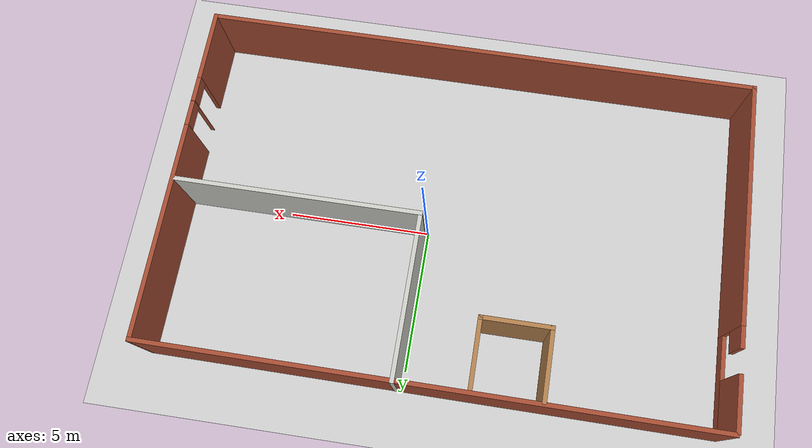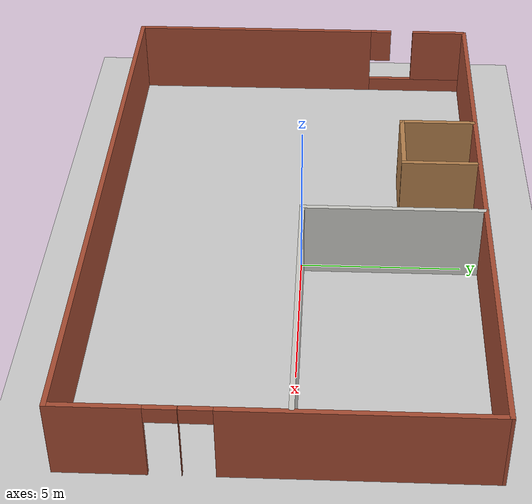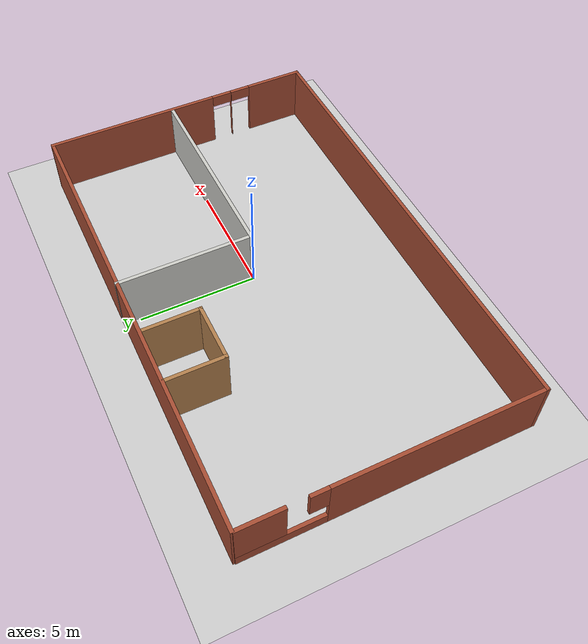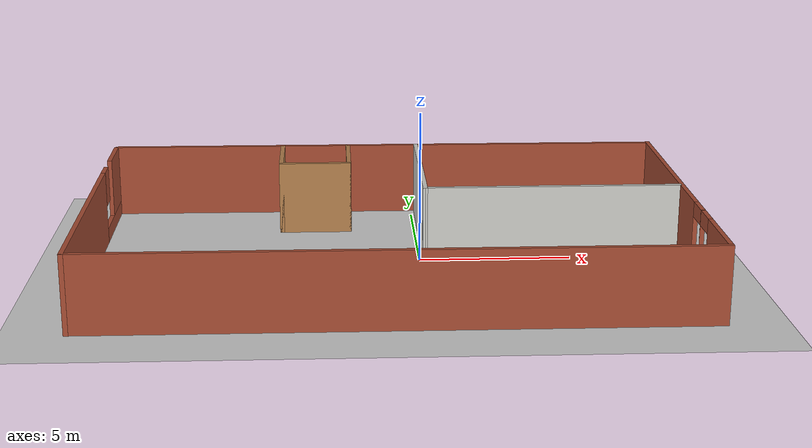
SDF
<sdf version="1.7">
 <world name="default">
  <light name="sun" type="directional">
   <pose>0 0 10 0 -0 0</pose>
   <diffuse>0.8 0.8 0.8 1</diffuse>
   <specular>0.2 0.2 0.2 1</specular>
   <attenuation>
    <range>1000</range>
    <constant>0.9</constant>
    <linear>0.01</linear>
    <quadratic>0.001</quadratic>
   </attenuation>
   <direction>-0.5 0.1 -0.9</direction>
   <spot><inner_angle>0</inner_angle><outer_angle>0</outer_angle><falloff>0</falloff></spot>
  </light>
  <model name="ground_plane">
   <static>1</static>
   <link name="link">
    <collision name="collision">
     <geometry><plane><normal>0 0 1</normal><size>100 100</size></plane></geometry>
     <surface>
      <contact><collide_bitmask>65535</collide_bitmask></contact>
      <friction><ode><mu>100</mu><mu2>50</mu2></ode></friction>
     </surface>
    </collision>
    <visual name="visual">
     <cast_shadows>0</cast_shadows>
     <geometry><plane><normal>0 0 1</normal><size>100 100</size></plane></geometry>
     <material>
      <script><uri>file://media/materials/scripts/gazebo.material</uri><name>Gazebo/Grey</name></script>
     </material>
    </visual>
   </link>
  </model>
  <gravity>0 0 -9.8</gravity>
  <magnetic_field>6e-06 2.3e-05 -4.2e-05</magnetic_field>
  <atmosphere type="adiabatic"/>
  <physics type="ode">
   <max_step_size>0.001</max_step_size>
   <real_time_factor>1</real_time_factor>
   <real_time_update_rate>1000</real_time_update_rate>
  </physics>
  <scene><ambient>0.4 0.4 0.4 1</ambient><background>0.7 0.7 0.7 1</background><shadows>1</shadows></scene>
  <audio><device>default</device></audio>
  <spherical_coordinates>
   <surface_model>EARTH_WGS84</surface_model>
   <latitude_deg>0</latitude_deg>
   <longitude_deg>0</longitude_deg>
   <elevation>0</elevation>
   <heading_deg>0</heading_deg>
  </spherical_coordinates>
  <model name="Untitled">
   <pose>-0.985369 -0.31212 0 0 -0 0</pose>
   <link name="Wall_27">
    <collision name="Wall_27_Collision">
     <geometry><box><size>19.5 0.15 2.5</size></box></geometry>
     <pose>0 0 1.25 0 -0 0</pose>
    </collision>
    <visual name="Wall_27_Visual">
     <pose>0 0 1.25 0 -0 0</pose>
     <geometry><box><size>19.5 0.15 2.5</size></box></geometry>
     <material>
      <script><uri>file://media/materials/scripts/gazebo.material</uri><name>Gazebo/Bricks</name></script>
      <ambient>1 1 1 1</ambient>
     </material>
     <meta><layer>0</layer></meta>
    </visual>
    <pose>-0.000189 -5.96295 0 0 -0 0</pose>
   </link>
   <link name="Wall_28">
    <pose>9.67481 -0.037947 0 0 -0 1.5708</pose>
    <visual name="Wall_28_Visual_0">
     <pose>-4.70999 0 1.25 0 -0 0</pose>
     <geometry><box><size>2.58002 0.15 2.5</size></box></geometry>
     <material>
      <script><uri>file://media/materials/scripts/gazebo.material</uri><name>Gazebo/Bricks</name></script>
      <ambient>1 1 1 1</ambient>
     </material>
     <meta><layer>0</layer></meta>
    </visual>
    <collision name="Wall_28_Collision_0">
     <geometry><box><size>2.58002 0.15 2.5</size></box></geometry>
     <pose>-4.70999 0 1.25 0 -0 0</pose>
    </collision>
    <visual name="Wall_28_Visual_1">
     <pose>-2.51266 0 1.25 0 -0 0</pose>
     <geometry><box><size>0.014648 0.15 2.5</size></box></geometry>
     <material>
      <script><uri>file://media/materials/scripts/gazebo.material</uri><name>Gazebo/Bricks</name></script>
      <ambient>1 1 1 1</ambient>
     </material>
     <meta><layer>0</layer></meta>
    </visual>
    <collision name="Wall_28_Collision_1">
     <geometry><box><size>0.014648 0.15 2.5</size></box></geometry>
     <pose>-2.51266 0 1.25 0 -0 0</pose>
    </collision>
    <visual name="Wall_28_Visual_2">
     <pose>2.19733 0 1.25 0 -0 0</pose>
     <geometry><box><size>7.60534 0.15 2.5</size></box></geometry>
     <material>
      <script><uri>file://media/materials/scripts/gazebo.material</uri><name>Gazebo/Bricks</name></script>
      <ambient>1 1 1 1</ambient>
     </material>
     <meta><layer>0</layer></meta>
    </visual>
    <collision name="Wall_28_Collision_2">
     <geometry><box><size>7.60534 0.15 2.5</size></box></geometry>
     <pose>2.19733 0 1.25 0 -0 0</pose>
    </collision>
    <visual name="Wall_28_Visual_3">
     <pose>-2.96998 0 2.25 0 -0 0</pose>
     <geometry><box><size>0.9 0.15 0.5</size></box></geometry>
     <material>
      <script><uri>file://media/materials/scripts/gazebo.material</uri><name>Gazebo/Bricks</name></script>
      <ambient>1 1 1 1</ambient>
     </material>
     <meta><layer>0</layer></meta>
    </visual>
    <collision name="Wall_28_Collision_3">
     <geometry><box><size>0.9 0.15 0.5</size></box></geometry>
     <pose>-2.96998 0 2.25 0 -0 0</pose>
    </collision>
    <visual name="Wall_28_Visual_4">
     <pose>-2.05534 0 2.25 0 -0 0</pose>
     <geometry><box><size>0.9 0.15 0.5</size></box></geometry>
     <material>
      <script><uri>file://media/materials/scripts/gazebo.material</uri><name>Gazebo/Bricks</name></script>
      <ambient>1 1 1 1</ambient>
     </material>
     <meta><layer>0</layer></meta>
    </visual>
    <collision name="Wall_28_Collision_4">
     <geometry><box><size>0.9 0.15 0.5</size></box></geometry>
     <pose>-2.05534 0 2.25 0 -0 0</pose>
    </collision>
   </link>
   <link name="Wall_29">
    <collision name="Wall_29_Collision">
     <geometry><box><size>19.4651 0.15 2.5</size></box></geometry>
     <pose>0 0 1.25 0 -0 0</pose>
    </collision>
    <visual name="Wall_29_Visual">
     <pose>0 0 1.25 0 -0 0</pose>
     <geometry><box><size>19.4651 0.15 2.5</size></box></geometry>
     <material>
      <script><uri>file://media/materials/scripts/gazebo.material</uri><name>Gazebo/Bricks</name></script>
      <ambient>1 1 1 1</ambient>
     </material>
     <meta><layer>0</layer></meta>
    </visual>
    <pose>0.0174 5.92485 0 0 -0 3.13768</pose>
   </link>
   <link name="Wall_31">
    <pose>-9.67519 -0.037947 0 0 -0 1.5708</pose>
    <visual name="Wall_31_Visual_0">
     <pose>-1.71239 0 1.25 0 -0 0</pose>
     <geometry><box><size>8.57523 0.15 2.5</size></box></geometry>
     <material>
      <script><uri>file://media/materials/scripts/gazebo.material</uri><name>Gazebo/Bricks</name></script>
      <ambient>1 1 1 1</ambient>
     </material>
     <meta><layer>0</layer></meta>
    </visual>
    <collision name="Wall_31_Collision_0">
     <geometry><box><size>8.57523 0.15 2.5</size></box></geometry>
     <pose>-1.71239 0 1.25 0 -0 0</pose>
    </collision>
    <visual name="Wall_31_Visual_1">
     <pose>4.28761 0 0.25 0 -0 0</pose>
     <geometry><box><size>3.42477 0.15 0.5</size></box></geometry>
     <material>
      <script><uri>file://media/materials/scripts/gazebo.material</uri><name>Gazebo/Bricks</name></script>
      <ambient>1 1 1 1</ambient>
     </material>
     <meta><layer>0</layer></meta>
    </visual>
    <collision name="Wall_31_Collision_1">
     <geometry><box><size>3.42477 0.15 0.5</size></box></geometry>
     <pose>4.28761 0 0.25 0 -0 0</pose>
    </collision>
    <visual name="Wall_31_Visual_2">
     <pose>5.05699 0 1.5 0 -0 0</pose>
     <geometry><box><size>1.88602 0.15 2</size></box></geometry>
     <material>
      <script><uri>file://media/materials/scripts/gazebo.material</uri><name>Gazebo/Bricks</name></script>
      <ambient>1 1 1 1</ambient>
     </material>
     <meta><layer>0</layer></meta>
    </visual>
    <collision name="Wall_31_Collision_2">
     <geometry><box><size>1.88602 0.15 2</size></box></geometry>
     <pose>5.05699 0 1.5 0 -0 0</pose>
    </collision>
    <visual name="Wall_31_Visual_3">
     <pose>2.9446 0 1.9 0 -0 0</pose>
     <geometry><box><size>0.738754 0.15 1.2</size></box></geometry>
     <material>
      <script><uri>file://media/materials/scripts/gazebo.material</uri><name>Gazebo/Bricks</name></script>
      <ambient>1 1 1 1</ambient>
     </material>
     <meta><layer>0</layer></meta>
    </visual>
    <collision name="Wall_31_Collision_3">
     <geometry><box><size>0.738754 0.15 1.2</size></box></geometry>
     <pose>2.9446 0 1.9 0 -0 0</pose>
    </collision>
   </link>
   <link name="Wall_33">
    <collision name="Wall_33_Collision">
     <geometry><box><size>2.5 0.15 2.5</size></box></geometry>
     <pose>0 0 1.25 0 -0 0</pose>
    </collision>
    <visual name="Wall_33_Visual">
     <pose>0 0 1.25 0 -0 0</pose>
     <geometry><box><size>2.5 0.15 2.5</size></box></geometry>
     <material>
      <script><uri>file://media/materials/scripts/gazebo.material</uri><name>Gazebo/Wood</name></script>
      <ambient>1 1 1 1</ambient>
     </material>
     <meta><layer>0</layer></meta>
    </visual>
    <pose>-3.65962 4.68212 0 0 -0 -1.5708</pose>
   </link>
   <link name="Wall_34">
    <collision name="Wall_34_Collision">
     <geometry><box><size>2.5 0.15 2.5</size></box></geometry>
     <pose>0 0 1.25 0 -0 0</pose>
    </collision>
    <visual name="Wall_34_Visual">
     <pose>0 0 1.25 0 -0 0</pose>
     <geometry><box><size>2.5 0.15 2.5</size></box></geometry>
     <material>
      <script><uri>file://media/materials/scripts/gazebo.material</uri><name>Gazebo/Wood</name></script>
      <ambient>1 1 1 1</ambient>
     </material>
     <meta><layer>0</layer></meta>
    </visual>
    <pose>-2.48462 3.50712 0 0 -0 0</pose>
   </link>
   <link name="Wall_35">
    <collision name="Wall_35_Collision">
     <geometry><box><size>2.5 0.15 2.5</size></box></geometry>
     <pose>0 0 1.25 0 -0 0</pose>
    </collision>
    <visual name="Wall_35_Visual">
     <pose>0 0 1.25 0 -0 0</pose>
     <geometry><box><size>2.5 0.15 2.5</size></box></geometry>
     <material>
      <script><uri>file://media/materials/scripts/gazebo.material</uri><name>Gazebo/Wood</name></script>
      <ambient>1 1 1 1</ambient>
     </material>
     <meta><layer>0</layer></meta>
    </visual>
    <pose>-1.30962 4.68212 0 0 -0 1.5708</pose>
   </link>
   <link name="Wall_37">
    <collision name="Wall_37_Collision">
     <geometry><box><size>5.75 0.15 2.5</size></box></geometry>
     <pose>0 0 1.25 0 -0 0</pose>
    </collision>
    <visual name="Wall_37_Visual">
     <pose>0 0 1.25 0 -0 0</pose>
     <geometry><box><size>5.75 0.15 2.5</size></box></geometry>
     <material>
      <script><uri>file://media/materials/scripts/gazebo.material</uri><name>Gazebo/CeilingTiled</name></script>
      <ambient>1 1 1 1</ambient>
     </material>
     <meta><layer>0</layer></meta>
    </visual>
    <pose>1.15987 3.12748 0 0 -0 -1.5708</pose>
   </link>
   <link name="Wall_38">
    <collision name="Wall_38_Collision">
     <geometry><box><size>8.55773 0.15 2.5</size></box></geometry>
     <pose>0 0 1.25 0 -0 0</pose>
    </collision>
    <visual name="Wall_38_Visual">
     <pose>0 0 1.25 0 -0 0</pose>
     <geometry><box><size>8.55773 0.15 2.5</size></box></geometry>
     <material>
      <script><uri>file://media/materials/scripts/gazebo.material</uri><name>Gazebo/CeilingTiled</name></script>
      <ambient>1 1 1 1</ambient>
     </material>
     <meta><layer>0</layer></meta>
    </visual>
    <pose>5.36373 0.330764 0 0 -0 0.000782</pose>
   </link>
   <static>1</static>
  </model>
 </world>
</sdf>
